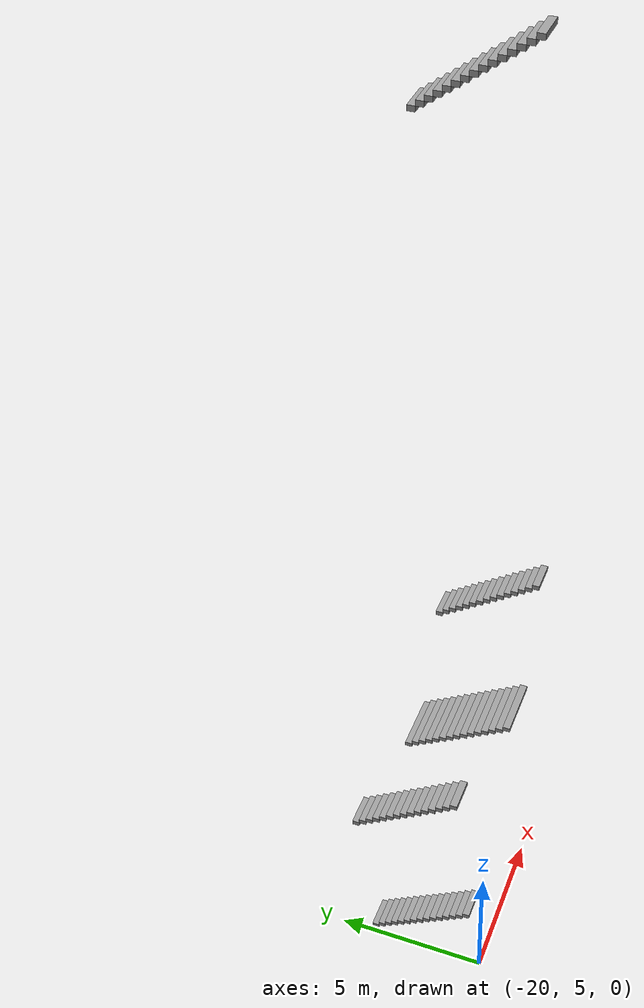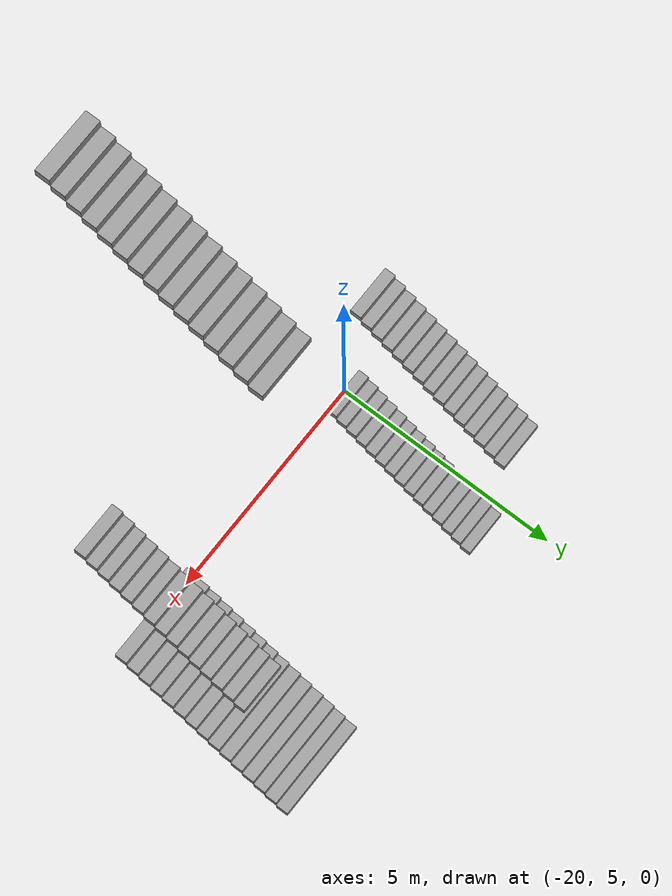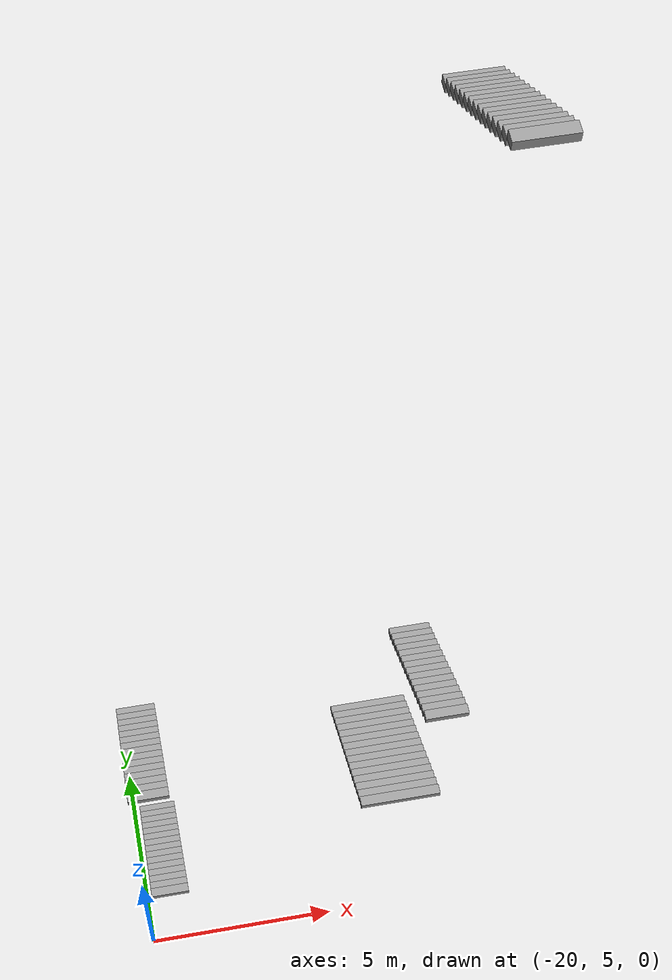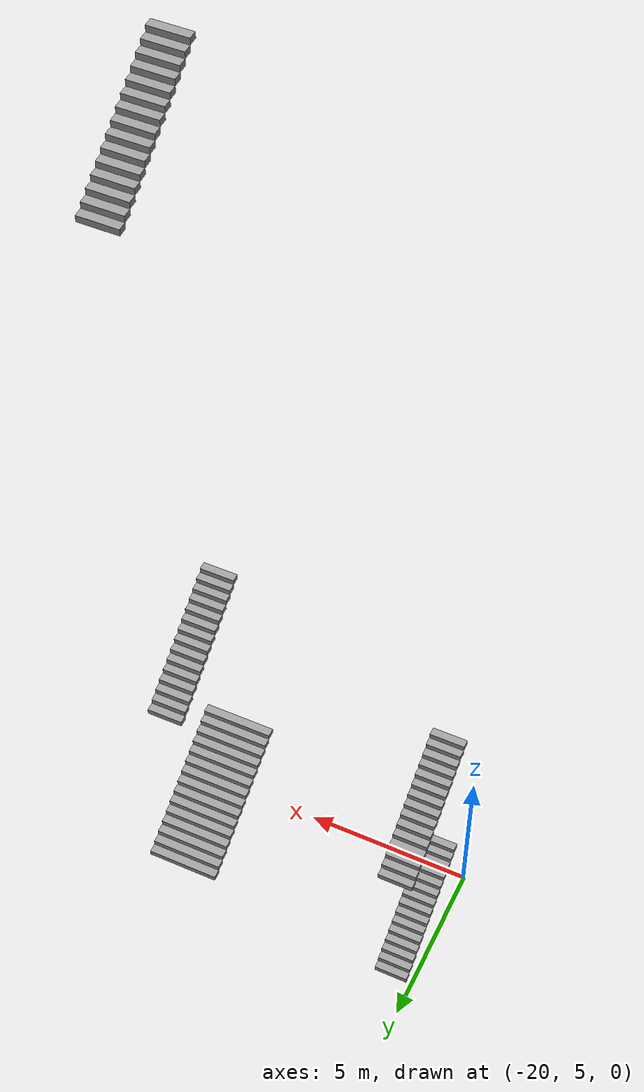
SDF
<sdf version="1.7">
 <model name="high_building">
  <pose>-8.08785 -0.655 0 0 -0 0</pose>
  <link name="Stairs_12">
   <visual name="Stairs_12_Visual_0">
    <pose>-4.45707 10.4678 27.0833 0 -0 0</pose>
    <geometry><box><size>1 0.233333 0.166667</size></box></geometry>
    <material>
     <script><uri>file://media/materials/scripts/gazebo.material</uri><name>Gazebo/Grey</name></script>
     <ambient>1 1 1 1</ambient>
    </material>
    <meta><layer>9</layer></meta>
   </visual>
   <collision name="Stairs_12_Collision_0">
    <geometry><box><size>1 0.233333 0.166667</size></box></geometry>
    <pose>-4.45707 10.4678 27.0833 0 -0 0</pose>
   </collision>
   <visual name="Stairs_12_Visual_1">
    <pose>-4.45707 10.2344 27.25 0 -0 0</pose>
    <geometry><box><size>1 0.233333 0.166667</size></box></geometry>
    <material>
     <script><uri>file://media/materials/scripts/gazebo.material</uri><name>Gazebo/Grey</name></script>
     <ambient>1 1 1 1</ambient>
    </material>
    <meta><layer>9</layer></meta>
   </visual>
   <collision name="Stairs_12_Collision_1">
    <geometry><box><size>1 0.233333 0.166667</size></box></geometry>
    <pose>-4.45707 10.2344 27.25 0 -0 0</pose>
   </collision>
   <visual name="Stairs_12_Visual_2">
    <pose>-4.45707 10.0011 27.4167 0 -0 0</pose>
    <geometry><box><size>1 0.233333 0.166667</size></box></geometry>
    <material>
     <script><uri>file://media/materials/scripts/gazebo.material</uri><name>Gazebo/Grey</name></script>
     <ambient>1 1 1 1</ambient>
    </material>
    <meta><layer>9</layer></meta>
   </visual>
   <collision name="Stairs_12_Collision_2">
    <geometry><box><size>1 0.233333 0.166667</size></box></geometry>
    <pose>-4.45707 10.0011 27.4167 0 -0 0</pose>
   </collision>
   <visual name="Stairs_12_Visual_3">
    <pose>-4.45707 9.76776 27.5833 0 -0 0</pose>
    <geometry><box><size>1 0.233333 0.166667</size></box></geometry>
    <material>
     <script><uri>file://media/materials/scripts/gazebo.material</uri><name>Gazebo/Grey</name></script>
     <ambient>1 1 1 1</ambient>
    </material>
    <meta><layer>9</layer></meta>
   </visual>
   <collision name="Stairs_12_Collision_3">
    <geometry><box><size>1 0.233333 0.166667</size></box></geometry>
    <pose>-4.45707 9.76776 27.5833 0 -0 0</pose>
   </collision>
   <visual name="Stairs_12_Visual_4">
    <pose>-4.45707 9.53442 27.75 0 -0 0</pose>
    <geometry><box><size>1 0.233333 0.166667</size></box></geometry>
    <material>
     <script><uri>file://media/materials/scripts/gazebo.material</uri><name>Gazebo/Grey</name></script>
     <ambient>1 1 1 1</ambient>
    </material>
    <meta><layer>9</layer></meta>
   </visual>
   <collision name="Stairs_12_Collision_4">
    <geometry><box><size>1 0.233333 0.166667</size></box></geometry>
    <pose>-4.45707 9.53442 27.75 0 -0 0</pose>
   </collision>
   <visual name="Stairs_12_Visual_5">
    <pose>-4.45707 9.30109 27.9167 0 -0 0</pose>
    <geometry><box><size>1 0.233333 0.166667</size></box></geometry>
    <material>
     <script><uri>file://media/materials/scripts/gazebo.material</uri><name>Gazebo/Grey</name></script>
     <ambient>1 1 1 1</ambient>
    </material>
    <meta><layer>9</layer></meta>
   </visual>
   <collision name="Stairs_12_Collision_5">
    <geometry><box><size>1 0.233333 0.166667</size></box></geometry>
    <pose>-4.45707 9.30109 27.9167 0 -0 0</pose>
   </collision>
   <visual name="Stairs_12_Visual_6">
    <pose>-4.45707 9.06776 28.0833 0 -0 0</pose>
    <geometry><box><size>1 0.233333 0.166667</size></box></geometry>
    <material>
     <script><uri>file://media/materials/scripts/gazebo.material</uri><name>Gazebo/Grey</name></script>
     <ambient>1 1 1 1</ambient>
    </material>
    <meta><layer>9</layer></meta>
   </visual>
   <collision name="Stairs_12_Collision_6">
    <geometry><box><size>1 0.233333 0.166667</size></box></geometry>
    <pose>-4.45707 9.06776 28.0833 0 -0 0</pose>
   </collision>
   <visual name="Stairs_12_Visual_7">
    <pose>-4.45707 8.83442 28.25 0 -0 0</pose>
    <geometry><box><size>1 0.233333 0.166667</size></box></geometry>
    <material>
     <script><uri>file://media/materials/scripts/gazebo.material</uri><name>Gazebo/Grey</name></script>
     <ambient>1 1 1 1</ambient>
    </material>
    <meta><layer>9</layer></meta>
   </visual>
   <collision name="Stairs_12_Collision_7">
    <geometry><box><size>1 0.233333 0.166667</size></box></geometry>
    <pose>-4.45707 8.83442 28.25 0 -0 0</pose>
   </collision>
   <visual name="Stairs_12_Visual_8">
    <pose>-4.45707 8.60109 28.4167 0 -0 0</pose>
    <geometry><box><size>1 0.233333 0.166667</size></box></geometry>
    <material>
     <script><uri>file://media/materials/scripts/gazebo.material</uri><name>Gazebo/Grey</name></script>
     <ambient>1 1 1 1</ambient>
    </material>
    <meta><layer>9</layer></meta>
   </visual>
   <collision name="Stairs_12_Collision_8">
    <geometry><box><size>1 0.233333 0.166667</size></box></geometry>
    <pose>-4.45707 8.60109 28.4167 0 -0 0</pose>
   </collision>
   <visual name="Stairs_12_Visual_9">
    <pose>-4.45707 8.36776 28.5833 0 -0 0</pose>
    <geometry><box><size>1 0.233333 0.166667</size></box></geometry>
    <material>
     <script><uri>file://media/materials/scripts/gazebo.material</uri><name>Gazebo/Grey</name></script>
     <ambient>1 1 1 1</ambient>
    </material>
    <meta><layer>9</layer></meta>
   </visual>
   <collision name="Stairs_12_Collision_9">
    <geometry><box><size>1 0.233333 0.166667</size></box></geometry>
    <pose>-4.45707 8.36776 28.5833 0 -0 0</pose>
   </collision>
   <visual name="Stairs_12_Visual_10">
    <pose>-4.45707 8.13442 28.75 0 -0 0</pose>
    <geometry><box><size>1 0.233333 0.166667</size></box></geometry>
    <material>
     <script><uri>file://media/materials/scripts/gazebo.material</uri><name>Gazebo/Grey</name></script>
     <ambient>1 1 1 1</ambient>
    </material>
    <meta><layer>9</layer></meta>
   </visual>
   <collision name="Stairs_12_Collision_10">
    <geometry><box><size>1 0.233333 0.166667</size></box></geometry>
    <pose>-4.45707 8.13442 28.75 0 -0 0</pose>
   </collision>
   <visual name="Stairs_12_Visual_11">
    <pose>-4.45707 7.90109 28.9167 0 -0 0</pose>
    <geometry><box><size>1 0.233333 0.166667</size></box></geometry>
    <material>
     <script><uri>file://media/materials/scripts/gazebo.material</uri><name>Gazebo/Grey</name></script>
     <ambient>1 1 1 1</ambient>
    </material>
    <meta><layer>9</layer></meta>
   </visual>
   <collision name="Stairs_12_Collision_11">
    <geometry><box><size>1 0.233333 0.166667</size></box></geometry>
    <pose>-4.45707 7.90109 28.9167 0 -0 0</pose>
   </collision>
   <visual name="Stairs_12_Visual_12">
    <pose>-4.45707 7.66776 29.0833 0 -0 0</pose>
    <geometry><box><size>1 0.233333 0.166667</size></box></geometry>
    <material>
     <script><uri>file://media/materials/scripts/gazebo.material</uri><name>Gazebo/Grey</name></script>
     <ambient>1 1 1 1</ambient>
    </material>
    <meta><layer>9</layer></meta>
   </visual>
   <collision name="Stairs_12_Collision_12">
    <geometry><box><size>1 0.233333 0.166667</size></box></geometry>
    <pose>-4.45707 7.66776 29.0833 0 -0 0</pose>
   </collision>
   <visual name="Stairs_12_Visual_13">
    <pose>-4.45707 7.43442 29.25 0 -0 0</pose>
    <geometry><box><size>1 0.233333 0.166667</size></box></geometry>
    <material>
     <script><uri>file://media/materials/scripts/gazebo.material</uri><name>Gazebo/Grey</name></script>
     <ambient>1 1 1 1</ambient>
    </material>
    <meta><layer>9</layer></meta>
   </visual>
   <collision name="Stairs_12_Collision_13">
    <geometry><box><size>1 0.233333 0.166667</size></box></geometry>
    <pose>-4.45707 7.43442 29.25 0 -0 0</pose>
   </collision>
   <visual name="Stairs_12_Visual_14">
    <pose>-4.45707 7.20109 29.4167 0 -0 0</pose>
    <geometry><box><size>1 0.233333 0.166667</size></box></geometry>
    <material>
     <script><uri>file://media/materials/scripts/gazebo.material</uri><name>Gazebo/Grey</name></script>
     <ambient>1 1 1 1</ambient>
    </material>
    <meta><layer>9</layer></meta>
   </visual>
   <collision name="Stairs_12_Collision_14">
    <geometry><box><size>1 0.233333 0.166667</size></box></geometry>
    <pose>-4.45707 7.20109 29.4167 0 -0 0</pose>
   </collision>
  </link>
  <link name="Stairs_2">
   <visual name="Stairs_2_Visual_0">
    <pose>-5.03508 10.3612 3.08333 0 -0 0</pose>
    <geometry><box><size>2.06401 0.25816 0.166667</size></box></geometry>
    <material>
     <script><uri>file://media/materials/scripts/gazebo.material</uri><name>Gazebo/Grey</name></script>
     <ambient>1 1 1 1</ambient>
    </material>
    <meta><layer>1</layer></meta>
   </visual>
   <collision name="Stairs_2_Collision_0">
    <geometry><box><size>2.06401 0.25816 0.166667</size></box></geometry>
    <pose>-5.03508 10.3612 3.08333 0 -0 0</pose>
   </collision>
   <visual name="Stairs_2_Visual_1">
    <pose>-5.03508 10.1031 3.25 0 -0 0</pose>
    <geometry><box><size>2.06401 0.25816 0.166667</size></box></geometry>
    <material>
     <script><uri>file://media/materials/scripts/gazebo.material</uri><name>Gazebo/Grey</name></script>
     <ambient>1 1 1 1</ambient>
    </material>
    <meta><layer>1</layer></meta>
   </visual>
   <collision name="Stairs_2_Collision_1">
    <geometry><box><size>2.06401 0.25816 0.166667</size></box></geometry>
    <pose>-5.03508 10.1031 3.25 0 -0 0</pose>
   </collision>
   <visual name="Stairs_2_Visual_2">
    <pose>-5.03508 9.8449 3.41667 0 -0 0</pose>
    <geometry><box><size>2.06401 0.25816 0.166667</size></box></geometry>
    <material>
     <script><uri>file://media/materials/scripts/gazebo.material</uri><name>Gazebo/Grey</name></script>
     <ambient>1 1 1 1</ambient>
    </material>
    <meta><layer>1</layer></meta>
   </visual>
   <collision name="Stairs_2_Collision_2">
    <geometry><box><size>2.06401 0.25816 0.166667</size></box></geometry>
    <pose>-5.03508 9.8449 3.41667 0 -0 0</pose>
   </collision>
   <visual name="Stairs_2_Visual_3">
    <pose>-5.03508 9.58674 3.58333 0 -0 0</pose>
    <geometry><box><size>2.06401 0.25816 0.166667</size></box></geometry>
    <material>
     <script><uri>file://media/materials/scripts/gazebo.material</uri><name>Gazebo/Grey</name></script>
     <ambient>1 1 1 1</ambient>
    </material>
    <meta><layer>1</layer></meta>
   </visual>
   <collision name="Stairs_2_Collision_3">
    <geometry><box><size>2.06401 0.25816 0.166667</size></box></geometry>
    <pose>-5.03508 9.58674 3.58333 0 -0 0</pose>
   </collision>
   <visual name="Stairs_2_Visual_4">
    <pose>-5.03508 9.32858 3.75 0 -0 0</pose>
    <geometry><box><size>2.06401 0.25816 0.166667</size></box></geometry>
    <material>
     <script><uri>file://media/materials/scripts/gazebo.material</uri><name>Gazebo/Grey</name></script>
     <ambient>1 1 1 1</ambient>
    </material>
    <meta><layer>1</layer></meta>
   </visual>
   <collision name="Stairs_2_Collision_4">
    <geometry><box><size>2.06401 0.25816 0.166667</size></box></geometry>
    <pose>-5.03508 9.32858 3.75 0 -0 0</pose>
   </collision>
   <visual name="Stairs_2_Visual_5">
    <pose>-5.03508 9.07042 3.91667 0 -0 0</pose>
    <geometry><box><size>2.06401 0.25816 0.166667</size></box></geometry>
    <material>
     <script><uri>file://media/materials/scripts/gazebo.material</uri><name>Gazebo/Grey</name></script>
     <ambient>1 1 1 1</ambient>
    </material>
    <meta><layer>1</layer></meta>
   </visual>
   <collision name="Stairs_2_Collision_5">
    <geometry><box><size>2.06401 0.25816 0.166667</size></box></geometry>
    <pose>-5.03508 9.07042 3.91667 0 -0 0</pose>
   </collision>
   <visual name="Stairs_2_Visual_6">
    <pose>-5.03508 8.81226 4.08333 0 -0 0</pose>
    <geometry><box><size>2.06401 0.25816 0.166667</size></box></geometry>
    <material>
     <script><uri>file://media/materials/scripts/gazebo.material</uri><name>Gazebo/Grey</name></script>
     <ambient>1 1 1 1</ambient>
    </material>
    <meta><layer>1</layer></meta>
   </visual>
   <collision name="Stairs_2_Collision_6">
    <geometry><box><size>2.06401 0.25816 0.166667</size></box></geometry>
    <pose>-5.03508 8.81226 4.08333 0 -0 0</pose>
   </collision>
   <visual name="Stairs_2_Visual_7">
    <pose>-5.03508 8.5541 4.25 0 -0 0</pose>
    <geometry><box><size>2.06401 0.25816 0.166667</size></box></geometry>
    <material>
     <script><uri>file://media/materials/scripts/gazebo.material</uri><name>Gazebo/Grey</name></script>
     <ambient>1 1 1 1</ambient>
    </material>
    <meta><layer>1</layer></meta>
   </visual>
   <collision name="Stairs_2_Collision_7">
    <geometry><box><size>2.06401 0.25816 0.166667</size></box></geometry>
    <pose>-5.03508 8.5541 4.25 0 -0 0</pose>
   </collision>
   <visual name="Stairs_2_Visual_8">
    <pose>-5.03508 8.29594 4.41667 0 -0 0</pose>
    <geometry><box><size>2.06401 0.25816 0.166667</size></box></geometry>
    <material>
     <script><uri>file://media/materials/scripts/gazebo.material</uri><name>Gazebo/Grey</name></script>
     <ambient>1 1 1 1</ambient>
    </material>
    <meta><layer>1</layer></meta>
   </visual>
   <collision name="Stairs_2_Collision_8">
    <geometry><box><size>2.06401 0.25816 0.166667</size></box></geometry>
    <pose>-5.03508 8.29594 4.41667 0 -0 0</pose>
   </collision>
   <visual name="Stairs_2_Visual_9">
    <pose>-5.03508 8.03778 4.58333 0 -0 0</pose>
    <geometry><box><size>2.06401 0.25816 0.166667</size></box></geometry>
    <material>
     <script><uri>file://media/materials/scripts/gazebo.material</uri><name>Gazebo/Grey</name></script>
     <ambient>1 1 1 1</ambient>
    </material>
    <meta><layer>1</layer></meta>
   </visual>
   <collision name="Stairs_2_Collision_9">
    <geometry><box><size>2.06401 0.25816 0.166667</size></box></geometry>
    <pose>-5.03508 8.03778 4.58333 0 -0 0</pose>
   </collision>
   <visual name="Stairs_2_Visual_10">
    <pose>-5.03508 7.77962 4.75 0 -0 0</pose>
    <geometry><box><size>2.06401 0.25816 0.166667</size></box></geometry>
    <material>
     <script><uri>file://media/materials/scripts/gazebo.material</uri><name>Gazebo/Grey</name></script>
     <ambient>1 1 1 1</ambient>
    </material>
    <meta><layer>1</layer></meta>
   </visual>
   <collision name="Stairs_2_Collision_10">
    <geometry><box><size>2.06401 0.25816 0.166667</size></box></geometry>
    <pose>-5.03508 7.77962 4.75 0 -0 0</pose>
   </collision>
   <visual name="Stairs_2_Visual_11">
    <pose>-5.03508 7.52146 4.91667 0 -0 0</pose>
    <geometry><box><size>2.06401 0.25816 0.166667</size></box></geometry>
    <material>
     <script><uri>file://media/materials/scripts/gazebo.material</uri><name>Gazebo/Grey</name></script>
     <ambient>1 1 1 1</ambient>
    </material>
    <meta><layer>1</layer></meta>
   </visual>
   <collision name="Stairs_2_Collision_11">
    <geometry><box><size>2.06401 0.25816 0.166667</size></box></geometry>
    <pose>-5.03508 7.52146 4.91667 0 -0 0</pose>
   </collision>
   <visual name="Stairs_2_Visual_12">
    <pose>-5.03508 7.2633 5.08333 0 -0 0</pose>
    <geometry><box><size>2.06401 0.25816 0.166667</size></box></geometry>
    <material>
     <script><uri>file://media/materials/scripts/gazebo.material</uri><name>Gazebo/Grey</name></script>
     <ambient>1 1 1 1</ambient>
    </material>
    <meta><layer>1</layer></meta>
   </visual>
   <collision name="Stairs_2_Collision_12">
    <geometry><box><size>2.06401 0.25816 0.166667</size></box></geometry>
    <pose>-5.03508 7.2633 5.08333 0 -0 0</pose>
   </collision>
   <visual name="Stairs_2_Visual_13">
    <pose>-5.03508 7.00514 5.25 0 -0 0</pose>
    <geometry><box><size>2.06401 0.25816 0.166667</size></box></geometry>
    <material>
     <script><uri>file://media/materials/scripts/gazebo.material</uri><name>Gazebo/Grey</name></script>
     <ambient>1 1 1 1</ambient>
    </material>
    <meta><layer>1</layer></meta>
   </visual>
   <collision name="Stairs_2_Collision_13">
    <geometry><box><size>2.06401 0.25816 0.166667</size></box></geometry>
    <pose>-5.03508 7.00514 5.25 0 -0 0</pose>
   </collision>
   <visual name="Stairs_2_Visual_14">
    <pose>-5.03508 6.74698 5.41667 0 -0 0</pose>
    <geometry><box><size>2.06401 0.25816 0.166667</size></box></geometry>
    <material>
     <script><uri>file://media/materials/scripts/gazebo.material</uri><name>Gazebo/Grey</name></script>
     <ambient>1 1 1 1</ambient>
    </material>
    <meta><layer>1</layer></meta>
   </visual>
   <collision name="Stairs_2_Collision_14">
    <geometry><box><size>2.06401 0.25816 0.166667</size></box></geometry>
    <pose>-5.03508 6.74698 5.41667 0 -0 0</pose>
   </collision>
  </link>
  <link name="Stairs_3">
   <visual name="Stairs_3_Visual_0">
    <pose>-11.2526 9.51594 0.083333 0 -0 0</pose>
    <geometry><box><size>1 0.233333 0.166667</size></box></geometry>
    <material>
     <script><uri>file://media/materials/scripts/gazebo.material</uri><name>Gazebo/Grey</name></script>
     <ambient>1 1 1 1</ambient>
    </material>
    <meta><layer>0</layer></meta>
   </visual>
   <collision name="Stairs_3_Collision_0">
    <geometry><box><size>1 0.233333 0.166667</size></box></geometry>
    <pose>-11.2526 9.51594 0.083333 0 -0 0</pose>
   </collision>
   <visual name="Stairs_3_Visual_1">
    <pose>-11.2526 9.2826 0.25 0 -0 0</pose>
    <geometry><box><size>1 0.233333 0.166667</size></box></geometry>
    <material>
     <script><uri>file://media/materials/scripts/gazebo.material</uri><name>Gazebo/Grey</name></script>
     <ambient>1 1 1 1</ambient>
    </material>
    <meta><layer>0</layer></meta>
   </visual>
   <collision name="Stairs_3_Collision_1">
    <geometry><box><size>1 0.233333 0.166667</size></box></geometry>
    <pose>-11.2526 9.2826 0.25 0 -0 0</pose>
   </collision>
   <visual name="Stairs_3_Visual_2">
    <pose>-11.2526 9.04927 0.416667 0 -0 0</pose>
    <geometry><box><size>1 0.233333 0.166667</size></box></geometry>
    <material>
     <script><uri>file://media/materials/scripts/gazebo.material</uri><name>Gazebo/Grey</name></script>
     <ambient>1 1 1 1</ambient>
    </material>
    <meta><layer>0</layer></meta>
   </visual>
   <collision name="Stairs_3_Collision_2">
    <geometry><box><size>1 0.233333 0.166667</size></box></geometry>
    <pose>-11.2526 9.04927 0.416667 0 -0 0</pose>
   </collision>
   <visual name="Stairs_3_Visual_3">
    <pose>-11.2526 8.81594 0.583333 0 -0 0</pose>
    <geometry><box><size>1 0.233333 0.166667</size></box></geometry>
    <material>
     <script><uri>file://media/materials/scripts/gazebo.material</uri><name>Gazebo/Grey</name></script>
     <ambient>1 1 1 1</ambient>
    </material>
    <meta><layer>0</layer></meta>
   </visual>
   <collision name="Stairs_3_Collision_3">
    <geometry><box><size>1 0.233333 0.166667</size></box></geometry>
    <pose>-11.2526 8.81594 0.583333 0 -0 0</pose>
   </collision>
   <visual name="Stairs_3_Visual_4">
    <pose>-11.2526 8.5826 0.75 0 -0 0</pose>
    <geometry><box><size>1 0.233333 0.166667</size></box></geometry>
    <material>
     <script><uri>file://media/materials/scripts/gazebo.material</uri><name>Gazebo/Grey</name></script>
     <ambient>1 1 1 1</ambient>
    </material>
    <meta><layer>0</layer></meta>
   </visual>
   <collision name="Stairs_3_Collision_4">
    <geometry><box><size>1 0.233333 0.166667</size></box></geometry>
    <pose>-11.2526 8.5826 0.75 0 -0 0</pose>
   </collision>
   <visual name="Stairs_3_Visual_5">
    <pose>-11.2526 8.34927 0.916667 0 -0 0</pose>
    <geometry><box><size>1 0.233333 0.166667</size></box></geometry>
    <material>
     <script><uri>file://media/materials/scripts/gazebo.material</uri><name>Gazebo/Grey</name></script>
     <ambient>1 1 1 1</ambient>
    </material>
    <meta><layer>0</layer></meta>
   </visual>
   <collision name="Stairs_3_Collision_5">
    <geometry><box><size>1 0.233333 0.166667</size></box></geometry>
    <pose>-11.2526 8.34927 0.916667 0 -0 0</pose>
   </collision>
   <visual name="Stairs_3_Visual_6">
    <pose>-11.2526 8.11594 1.08333 0 -0 0</pose>
    <geometry><box><size>1 0.233333 0.166667</size></box></geometry>
    <material>
     <script><uri>file://media/materials/scripts/gazebo.material</uri><name>Gazebo/Grey</name></script>
     <ambient>1 1 1 1</ambient>
    </material>
    <meta><layer>0</layer></meta>
   </visual>
   <collision name="Stairs_3_Collision_6">
    <geometry><box><size>1 0.233333 0.166667</size></box></geometry>
    <pose>-11.2526 8.11594 1.08333 0 -0 0</pose>
   </collision>
   <visual name="Stairs_3_Visual_7">
    <pose>-11.2526 7.8826 1.25 0 -0 0</pose>
    <geometry><box><size>1 0.233333 0.166667</size></box></geometry>
    <material>
     <script><uri>file://media/materials/scripts/gazebo.material</uri><name>Gazebo/Grey</name></script>
     <ambient>1 1 1 1</ambient>
    </material>
    <meta><layer>0</layer></meta>
   </visual>
   <collision name="Stairs_3_Collision_7">
    <geometry><box><size>1 0.233333 0.166667</size></box></geometry>
    <pose>-11.2526 7.8826 1.25 0 -0 0</pose>
   </collision>
   <visual name="Stairs_3_Visual_8">
    <pose>-11.2526 7.64927 1.41667 0 -0 0</pose>
    <geometry><box><size>1 0.233333 0.166667</size></box></geometry>
    <material>
     <script><uri>file://media/materials/scripts/gazebo.material</uri><name>Gazebo/Grey</name></script>
     <ambient>1 1 1 1</ambient>
    </material>
    <meta><layer>0</layer></meta>
   </visual>
   <collision name="Stairs_3_Collision_8">
    <geometry><box><size>1 0.233333 0.166667</size></box></geometry>
    <pose>-11.2526 7.64927 1.41667 0 -0 0</pose>
   </collision>
   <visual name="Stairs_3_Visual_9">
    <pose>-11.2526 7.41594 1.58333 0 -0 0</pose>
    <geometry><box><size>1 0.233333 0.166667</size></box></geometry>
    <material>
     <script><uri>file://media/materials/scripts/gazebo.material</uri><name>Gazebo/Grey</name></script>
     <ambient>1 1 1 1</ambient>
    </material>
    <meta><layer>0</layer></meta>
   </visual>
   <collision name="Stairs_3_Collision_9">
    <geometry><box><size>1 0.233333 0.166667</size></box></geometry>
    <pose>-11.2526 7.41594 1.58333 0 -0 0</pose>
   </collision>
   <visual name="Stairs_3_Visual_10">
    <pose>-11.2526 7.1826 1.75 0 -0 0</pose>
    <geometry><box><size>1 0.233333 0.166667</size></box></geometry>
    <material>
     <script><uri>file://media/materials/scripts/gazebo.material</uri><name>Gazebo/Grey</name></script>
     <ambient>1 1 1 1</ambient>
    </material>
    <meta><layer>0</layer></meta>
   </visual>
   <collision name="Stairs_3_Collision_10">
    <geometry><box><size>1 0.233333 0.166667</size></box></geometry>
    <pose>-11.2526 7.1826 1.75 0 -0 0</pose>
   </collision>
   <visual name="Stairs_3_Visual_11">
    <pose>-11.2526 6.94927 1.91667 0 -0 0</pose>
    <geometry><box><size>1 0.233333 0.166667</size></box></geometry>
    <material>
     <script><uri>file://media/materials/scripts/gazebo.material</uri><name>Gazebo/Grey</name></script>
     <ambient>1 1 1 1</ambient>
    </material>
    <meta><layer>0</layer></meta>
   </visual>
   <collision name="Stairs_3_Collision_11">
    <geometry><box><size>1 0.233333 0.166667</size></box></geometry>
    <pose>-11.2526 6.94927 1.91667 0 -0 0</pose>
   </collision>
   <visual name="Stairs_3_Visual_12">
    <pose>-11.2526 6.71594 2.08333 0 -0 0</pose>
    <geometry><box><size>1 0.233333 0.166667</size></box></geometry>
    <material>
     <script><uri>file://media/materials/scripts/gazebo.material</uri><name>Gazebo/Grey</name></script>
     <ambient>1 1 1 1</ambient>
    </material>
    <meta><layer>0</layer></meta>
   </visual>
   <collision name="Stairs_3_Collision_12">
    <geometry><box><size>1 0.233333 0.166667</size></box></geometry>
    <pose>-11.2526 6.71594 2.08333 0 -0 0</pose>
   </collision>
   <visual name="Stairs_3_Visual_13">
    <pose>-11.2526 6.4826 2.25 0 -0 0</pose>
    <geometry><box><size>1 0.233333 0.166667</size></box></geometry>
    <material>
     <script><uri>file://media/materials/scripts/gazebo.material</uri><name>Gazebo/Grey</name></script>
     <ambient>1 1 1 1</ambient>
    </material>
    <meta><layer>0</layer></meta>
   </visual>
   <collision name="Stairs_3_Collision_13">
    <geometry><box><size>1 0.233333 0.166667</size></box></geometry>
    <pose>-11.2526 6.4826 2.25 0 -0 0</pose>
   </collision>
   <visual name="Stairs_3_Visual_14">
    <pose>-11.2526 6.24927 2.41667 0 -0 0</pose>
    <geometry><box><size>1 0.233333 0.166667</size></box></geometry>
    <material>
     <script><uri>file://media/materials/scripts/gazebo.material</uri><name>Gazebo/Grey</name></script>
     <ambient>1 1 1 1</ambient>
    </material>
    <meta><layer>0</layer></meta>
   </visual>
   <collision name="Stairs_3_Collision_14">
    <geometry><box><size>1 0.233333 0.166667</size></box></geometry>
    <pose>-11.2526 6.24927 2.41667 0 -0 0</pose>
   </collision>
  </link>
  <link name="Stairs_4">
   <visual name="Stairs_4_Visual_0">
    <pose>-11.3922 9.98118 6.08333 0 -0 0</pose>
    <geometry><box><size>1 0.233333 0.166667</size></box></geometry>
    <material>
     <script><uri>file://media/materials/scripts/gazebo.material</uri><name>Gazebo/Grey</name></script>
     <ambient>1 1 1 1</ambient>
    </material>
    <meta><layer>2</layer></meta>
   </visual>
   <collision name="Stairs_4_Collision_0">
    <geometry><box><size>1 0.233333 0.166667</size></box></geometry>
    <pose>-11.3922 9.98118 6.08333 0 -0 0</pose>
   </collision>
   <visual name="Stairs_4_Visual_1">
    <pose>-11.3922 9.74784 6.25 0 -0 0</pose>
    <geometry><box><size>1 0.233333 0.166667</size></box></geometry>
    <material>
     <script><uri>file://media/materials/scripts/gazebo.material</uri><name>Gazebo/Grey</name></script>
     <ambient>1 1 1 1</ambient>
    </material>
    <meta><layer>2</layer></meta>
   </visual>
   <collision name="Stairs_4_Collision_1">
    <geometry><box><size>1 0.233333 0.166667</size></box></geometry>
    <pose>-11.3922 9.74784 6.25 0 -0 0</pose>
   </collision>
   <visual name="Stairs_4_Visual_2">
    <pose>-11.3922 9.51451 6.41667 0 -0 0</pose>
    <geometry><box><size>1 0.233333 0.166667</size></box></geometry>
    <material>
     <script><uri>file://media/materials/scripts/gazebo.material</uri><name>Gazebo/Grey</name></script>
     <ambient>1 1 1 1</ambient>
    </material>
    <meta><layer>2</layer></meta>
   </visual>
   <collision name="Stairs_4_Collision_2">
    <geometry><box><size>1 0.233333 0.166667</size></box></geometry>
    <pose>-11.3922 9.51451 6.41667 0 -0 0</pose>
   </collision>
   <visual name="Stairs_4_Visual_3">
    <pose>-11.3922 9.28117 6.58333 0 -0 0</pose>
    <geometry><box><size>1 0.233333 0.166667</size></box></geometry>
    <material>
     <script><uri>file://media/materials/scripts/gazebo.material</uri><name>Gazebo/Grey</name></script>
     <ambient>1 1 1 1</ambient>
    </material>
    <meta><layer>2</layer></meta>
   </visual>
   <collision name="Stairs_4_Collision_3">
    <geometry><box><size>1 0.233333 0.166667</size></box></geometry>
    <pose>-11.3922 9.28117 6.58333 0 -0 0</pose>
   </collision>
   <visual name="Stairs_4_Visual_4">
    <pose>-11.3922 9.04784 6.75 0 -0 0</pose>
    <geometry><box><size>1 0.233333 0.166667</size></box></geometry>
    <material>
     <script><uri>file://media/materials/scripts/gazebo.material</uri><name>Gazebo/Grey</name></script>
     <ambient>1 1 1 1</ambient>
    </material>
    <meta><layer>2</layer></meta>
   </visual>
   <collision name="Stairs_4_Collision_4">
    <geometry><box><size>1 0.233333 0.166667</size></box></geometry>
    <pose>-11.3922 9.04784 6.75 0 -0 0</pose>
   </collision>
   <visual name="Stairs_4_Visual_5">
    <pose>-11.3922 8.81451 6.91667 0 -0 0</pose>
    <geometry><box><size>1 0.233333 0.166667</size></box></geometry>
    <material>
     <script><uri>file://media/materials/scripts/gazebo.material</uri><name>Gazebo/Grey</name></script>
     <ambient>1 1 1 1</ambient>
    </material>
    <meta><layer>2</layer></meta>
   </visual>
   <collision name="Stairs_4_Collision_5">
    <geometry><box><size>1 0.233333 0.166667</size></box></geometry>
    <pose>-11.3922 8.81451 6.91667 0 -0 0</pose>
   </collision>
   <visual name="Stairs_4_Visual_6">
    <pose>-11.3922 8.58117 7.08333 0 -0 0</pose>
    <geometry><box><size>1 0.233333 0.166667</size></box></geometry>
    <material>
     <script><uri>file://media/materials/scripts/gazebo.material</uri><name>Gazebo/Grey</name></script>
     <ambient>1 1 1 1</ambient>
    </material>
    <meta><layer>2</layer></meta>
   </visual>
   <collision name="Stairs_4_Collision_6">
    <geometry><box><size>1 0.233333 0.166667</size></box></geometry>
    <pose>-11.3922 8.58117 7.08333 0 -0 0</pose>
   </collision>
   <visual name="Stairs_4_Visual_7">
    <pose>-11.3922 8.34784 7.25 0 -0 0</pose>
    <geometry><box><size>1 0.233333 0.166667</size></box></geometry>
    <material>
     <script><uri>file://media/materials/scripts/gazebo.material</uri><name>Gazebo/Grey</name></script>
     <ambient>1 1 1 1</ambient>
    </material>
    <meta><layer>2</layer></meta>
   </visual>
   <collision name="Stairs_4_Collision_7">
    <geometry><box><size>1 0.233333 0.166667</size></box></geometry>
    <pose>-11.3922 8.34784 7.25 0 -0 0</pose>
   </collision>
   <visual name="Stairs_4_Visual_8">
    <pose>-11.3922 8.11451 7.41667 0 -0 0</pose>
    <geometry><box><size>1 0.233333 0.166667</size></box></geometry>
    <material>
     <script><uri>file://media/materials/scripts/gazebo.material</uri><name>Gazebo/Grey</name></script>
     <ambient>1 1 1 1</ambient>
    </material>
    <meta><layer>2</layer></meta>
   </visual>
   <collision name="Stairs_4_Collision_8">
    <geometry><box><size>1 0.233333 0.166667</size></box></geometry>
    <pose>-11.3922 8.11451 7.41667 0 -0 0</pose>
   </collision>
   <visual name="Stairs_4_Visual_9">
    <pose>-11.3922 7.88117 7.58333 0 -0 0</pose>
    <geometry><box><size>1 0.233333 0.166667</size></box></geometry>
    <material>
     <script><uri>file://media/materials/scripts/gazebo.material</uri><name>Gazebo/Grey</name></script>
     <ambient>1 1 1 1</ambient>
    </material>
    <meta><layer>2</layer></meta>
   </visual>
   <collision name="Stairs_4_Collision_9">
    <geometry><box><size>1 0.233333 0.166667</size></box></geometry>
    <pose>-11.3922 7.88117 7.58333 0 -0 0</pose>
   </collision>
   <visual name="Stairs_4_Visual_10">
    <pose>-11.3922 7.64784 7.75 0 -0 0</pose>
    <geometry><box><size>1 0.233333 0.166667</size></box></geometry>
    <material>
     <script><uri>file://media/materials/scripts/gazebo.material</uri><name>Gazebo/Grey</name></script>
     <ambient>1 1 1 1</ambient>
    </material>
    <meta><layer>2</layer></meta>
   </visual>
   <collision name="Stairs_4_Collision_10">
    <geometry><box><size>1 0.233333 0.166667</size></box></geometry>
    <pose>-11.3922 7.64784 7.75 0 -0 0</pose>
   </collision>
   <visual name="Stairs_4_Visual_11">
    <pose>-11.3922 7.41451 7.91667 0 -0 0</pose>
    <geometry><box><size>1 0.233333 0.166667</size></box></geometry>
    <material>
     <script><uri>file://media/materials/scripts/gazebo.material</uri><name>Gazebo/Grey</name></script>
     <ambient>1 1 1 1</ambient>
    </material>
    <meta><layer>2</layer></meta>
   </visual>
   <collision name="Stairs_4_Collision_11">
    <geometry><box><size>1 0.233333 0.166667</size></box></geometry>
    <pose>-11.3922 7.41451 7.91667 0 -0 0</pose>
   </collision>
   <visual name="Stairs_4_Visual_12">
    <pose>-11.3922 7.18117 8.08333 0 -0 0</pose>
    <geometry><box><size>1 0.233333 0.166667</size></box></geometry>
    <material>
     <script><uri>file://media/materials/scripts/gazebo.material</uri><name>Gazebo/Grey</name></script>
     <ambient>1 1 1 1</ambient>
    </material>
    <meta><layer>2</layer></meta>
   </visual>
   <collision name="Stairs_4_Collision_12">
    <geometry><box><size>1 0.233333 0.166667</size></box></geometry>
    <pose>-11.3922 7.18117 8.08333 0 -0 0</pose>
   </collision>
   <visual name="Stairs_4_Visual_13">
    <pose>-11.3922 6.94784 8.25 0 -0 0</pose>
    <geometry><box><size>1 0.233333 0.166667</size></box></geometry>
    <material>
     <script><uri>file://media/materials/scripts/gazebo.material</uri><name>Gazebo/Grey</name></script>
     <ambient>1 1 1 1</ambient>
    </material>
    <meta><layer>2</layer></meta>
   </visual>
   <collision name="Stairs_4_Collision_13">
    <geometry><box><size>1 0.233333 0.166667</size></box></geometry>
    <pose>-11.3922 6.94784 8.25 0 -0 0</pose>
   </collision>
   <visual name="Stairs_4_Visual_14">
    <pose>-11.3922 6.71451 8.41667 0 -0 0</pose>
    <geometry><box><size>1 0.233333 0.166667</size></box></geometry>
    <material>
     <script><uri>file://media/materials/scripts/gazebo.material</uri><name>Gazebo/Grey</name></script>
     <ambient>1 1 1 1</ambient>
    </material>
    <meta><layer>2</layer></meta>
   </visual>
   <collision name="Stairs_4_Collision_14">
    <geometry><box><size>1 0.233333 0.166667</size></box></geometry>
    <pose>-11.3922 6.71451 8.41667 0 -0 0</pose>
   </collision>
  </link>
  <link name="Stairs_6">
   <visual name="Stairs_6_Visual_0">
    <pose>-4.42842 9.62201 9.08333 0 -0 0</pose>
    <geometry><box><size>1 0.233333 0.166667</size></box></geometry>
    <material>
     <script><uri>file://media/materials/scripts/gazebo.material</uri><name>Gazebo/Grey</name></script>
     <ambient>1 1 1 1</ambient>
    </material>
    <meta><layer>3</layer></meta>
   </visual>
   <collision name="Stairs_6_Collision_0">
    <geometry><box><size>1 0.233333 0.166667</size></box></geometry>
    <pose>-4.42842 9.62201 9.08333 0 -0 0</pose>
   </collision>
   <visual name="Stairs_6_Visual_1">
    <pose>-4.42842 9.38868 9.25 0 -0 0</pose>
    <geometry><box><size>1 0.233333 0.166667</size></box></geometry>
    <material>
     <script><uri>file://media/materials/scripts/gazebo.material</uri><name>Gazebo/Grey</name></script>
     <ambient>1 1 1 1</ambient>
    </material>
    <meta><layer>3</layer></meta>
   </visual>
   <collision name="Stairs_6_Collision_1">
    <geometry><box><size>1 0.233333 0.166667</size></box></geometry>
    <pose>-4.42842 9.38868 9.25 0 -0 0</pose>
   </collision>
   <visual name="Stairs_6_Visual_2">
    <pose>-4.42842 9.15535 9.41667 0 -0 0</pose>
    <geometry><box><size>1 0.233333 0.166667</size></box></geometry>
    <material>
     <script><uri>file://media/materials/scripts/gazebo.material</uri><name>Gazebo/Grey</name></script>
     <ambient>1 1 1 1</ambient>
    </material>
    <meta><layer>3</layer></meta>
   </visual>
   <collision name="Stairs_6_Collision_2">
    <geometry><box><size>1 0.233333 0.166667</size></box></geometry>
    <pose>-4.42842 9.15535 9.41667 0 -0 0</pose>
   </collision>
   <visual name="Stairs_6_Visual_3">
    <pose>-4.42842 8.92202 9.58333 0 -0 0</pose>
    <geometry><box><size>1 0.233333 0.166667</size></box></geometry>
    <material>
     <script><uri>file://media/materials/scripts/gazebo.material</uri><name>Gazebo/Grey</name></script>
     <ambient>1 1 1 1</ambient>
    </material>
    <meta><layer>3</layer></meta>
   </visual>
   <collision name="Stairs_6_Collision_3">
    <geometry><box><size>1 0.233333 0.166667</size></box></geometry>
    <pose>-4.42842 8.92202 9.58333 0 -0 0</pose>
   </collision>
   <visual name="Stairs_6_Visual_4">
    <pose>-4.42842 8.68868 9.75 0 -0 0</pose>
    <geometry><box><size>1 0.233333 0.166667</size></box></geometry>
    <material>
     <script><uri>file://media/materials/scripts/gazebo.material</uri><name>Gazebo/Grey</name></script>
     <ambient>1 1 1 1</ambient>
    </material>
    <meta><layer>3</layer></meta>
   </visual>
   <collision name="Stairs_6_Collision_4">
    <geometry><box><size>1 0.233333 0.166667</size></box></geometry>
    <pose>-4.42842 8.68868 9.75 0 -0 0</pose>
   </collision>
   <visual name="Stairs_6_Visual_5">
    <pose>-4.42842 8.45535 9.91667 0 -0 0</pose>
    <geometry><box><size>1 0.233333 0.166667</size></box></geometry>
    <material>
     <script><uri>file://media/materials/scripts/gazebo.material</uri><name>Gazebo/Grey</name></script>
     <ambient>1 1 1 1</ambient>
    </material>
    <meta><layer>3</layer></meta>
   </visual>
   <collision name="Stairs_6_Collision_5">
    <geometry><box><size>1 0.233333 0.166667</size></box></geometry>
    <pose>-4.42842 8.45535 9.91667 0 -0 0</pose>
   </collision>
   <visual name="Stairs_6_Visual_6">
    <pose>-4.42842 8.22202 10.0833 0 -0 0</pose>
    <geometry><box><size>1 0.233333 0.166667</size></box></geometry>
    <material>
     <script><uri>file://media/materials/scripts/gazebo.material</uri><name>Gazebo/Grey</name></script>
     <ambient>1 1 1 1</ambient>
    </material>
    <meta><layer>3</layer></meta>
   </visual>
   <collision name="Stairs_6_Collision_6">
    <geometry><box><size>1 0.233333 0.166667</size></box></geometry>
    <pose>-4.42842 8.22202 10.0833 0 -0 0</pose>
   </collision>
   <visual name="Stairs_6_Visual_7">
    <pose>-4.42842 7.98868 10.25 0 -0 0</pose>
    <geometry><box><size>1 0.233333 0.166667</size></box></geometry>
    <material>
     <script><uri>file://media/materials/scripts/gazebo.material</uri><name>Gazebo/Grey</name></script>
     <ambient>1 1 1 1</ambient>
    </material>
    <meta><layer>3</layer></meta>
   </visual>
   <collision name="Stairs_6_Collision_7">
    <geometry><box><size>1 0.233333 0.166667</size></box></geometry>
    <pose>-4.42842 7.98868 10.25 0 -0 0</pose>
   </collision>
   <visual name="Stairs_6_Visual_8">
    <pose>-4.42842 7.75535 10.4167 0 -0 0</pose>
    <geometry><box><size>1 0.233333 0.166667</size></box></geometry>
    <material>
     <script><uri>file://media/materials/scripts/gazebo.material</uri><name>Gazebo/Grey</name></script>
     <ambient>1 1 1 1</ambient>
    </material>
    <meta><layer>3</layer></meta>
   </visual>
   <collision name="Stairs_6_Collision_8">
    <geometry><box><size>1 0.233333 0.166667</size></box></geometry>
    <pose>-4.42842 7.75535 10.4167 0 -0 0</pose>
   </collision>
   <visual name="Stairs_6_Visual_9">
    <pose>-4.42842 7.52201 10.5833 0 -0 0</pose>
    <geometry><box><size>1 0.233333 0.166667</size></box></geometry>
    <material>
     <script><uri>file://media/materials/scripts/gazebo.material</uri><name>Gazebo/Grey</name></script>
     <ambient>1 1 1 1</ambient>
    </material>
    <meta><layer>3</layer></meta>
   </visual>
   <collision name="Stairs_6_Collision_9">
    <geometry><box><size>1 0.233333 0.166667</size></box></geometry>
    <pose>-4.42842 7.52201 10.5833 0 -0 0</pose>
   </collision>
   <visual name="Stairs_6_Visual_10">
    <pose>-4.42842 7.28868 10.75 0 -0 0</pose>
    <geometry><box><size>1 0.233333 0.166667</size></box></geometry>
    <material>
     <script><uri>file://media/materials/scripts/gazebo.material</uri><name>Gazebo/Grey</name></script>
     <ambient>1 1 1 1</ambient>
    </material>
    <meta><layer>3</layer></meta>
   </visual>
   <collision name="Stairs_6_Collision_10">
    <geometry><box><size>1 0.233333 0.166667</size></box></geometry>
    <pose>-4.42842 7.28868 10.75 0 -0 0</pose>
   </collision>
   <visual name="Stairs_6_Visual_11">
    <pose>-4.42842 7.05535 10.9167 0 -0 0</pose>
    <geometry><box><size>1 0.233333 0.166667</size></box></geometry>
    <material>
     <script><uri>file://media/materials/scripts/gazebo.material</uri><name>Gazebo/Grey</name></script>
     <ambient>1 1 1 1</ambient>
    </material>
    <meta><layer>3</layer></meta>
   </visual>
   <collision name="Stairs_6_Collision_11">
    <geometry><box><size>1 0.233333 0.166667</size></box></geometry>
    <pose>-4.42842 7.05535 10.9167 0 -0 0</pose>
   </collision>
   <visual name="Stairs_6_Visual_12">
    <pose>-4.42842 6.82202 11.0833 0 -0 0</pose>
    <geometry><box><size>1 0.233333 0.166667</size></box></geometry>
    <material>
     <script><uri>file://media/materials/scripts/gazebo.material</uri><name>Gazebo/Grey</name></script>
     <ambient>1 1 1 1</ambient>
    </material>
    <meta><layer>3</layer></meta>
   </visual>
   <collision name="Stairs_6_Collision_12">
    <geometry><box><size>1 0.233333 0.166667</size></box></geometry>
    <pose>-4.42842 6.82202 11.0833 0 -0 0</pose>
   </collision>
   <visual name="Stairs_6_Visual_13">
    <pose>-4.42842 6.58868 11.25 0 -0 0</pose>
    <geometry><box><size>1 0.233333 0.166667</size></box></geometry>
    <material>
     <script><uri>file://media/materials/scripts/gazebo.material</uri><name>Gazebo/Grey</name></script>
     <ambient>1 1 1 1</ambient>
    </material>
    <meta><layer>3</layer></meta>
   </visual>
   <collision name="Stairs_6_Collision_13">
    <geometry><box><size>1 0.233333 0.166667</size></box></geometry>
    <pose>-4.42842 6.58868 11.25 0 -0 0</pose>
   </collision>
   <visual name="Stairs_6_Visual_14">
    <pose>-4.42842 6.35535 11.4167 0 -0 0</pose>
    <geometry><box><size>1 0.233333 0.166667</size></box></geometry>
    <material>
     <script><uri>file://media/materials/scripts/gazebo.material</uri><name>Gazebo/Grey</name></script>
     <ambient>1 1 1 1</ambient>
    </material>
    <meta><layer>3</layer></meta>
   </visual>
   <collision name="Stairs_6_Collision_14">
    <geometry><box><size>1 0.233333 0.166667</size></box></geometry>
    <pose>-4.42842 6.35535 11.4167 0 -0 0</pose>
   </collision>
  </link>
  <static>1</static>
 </model>
</sdf>
